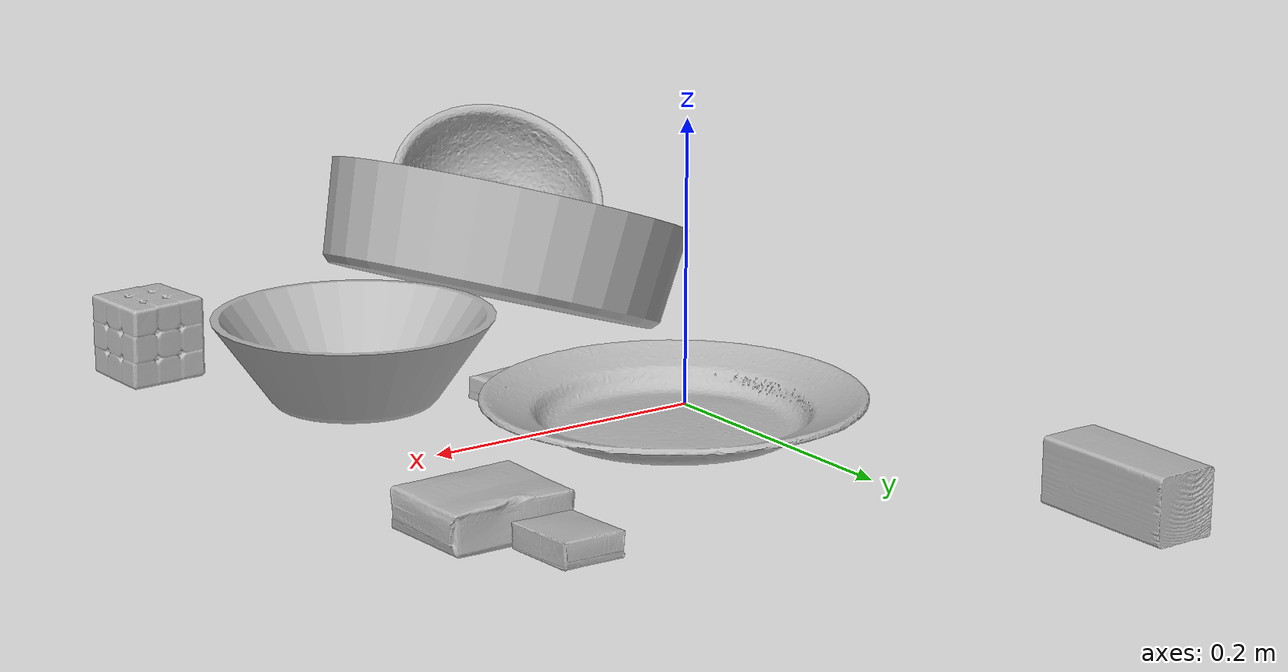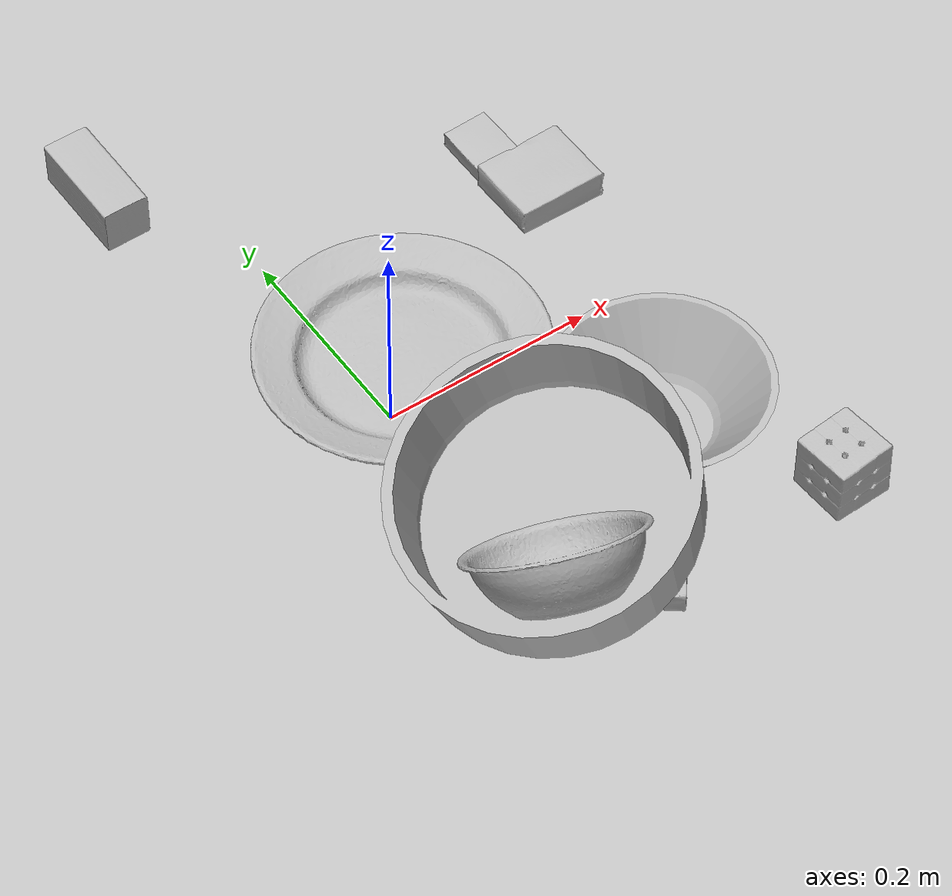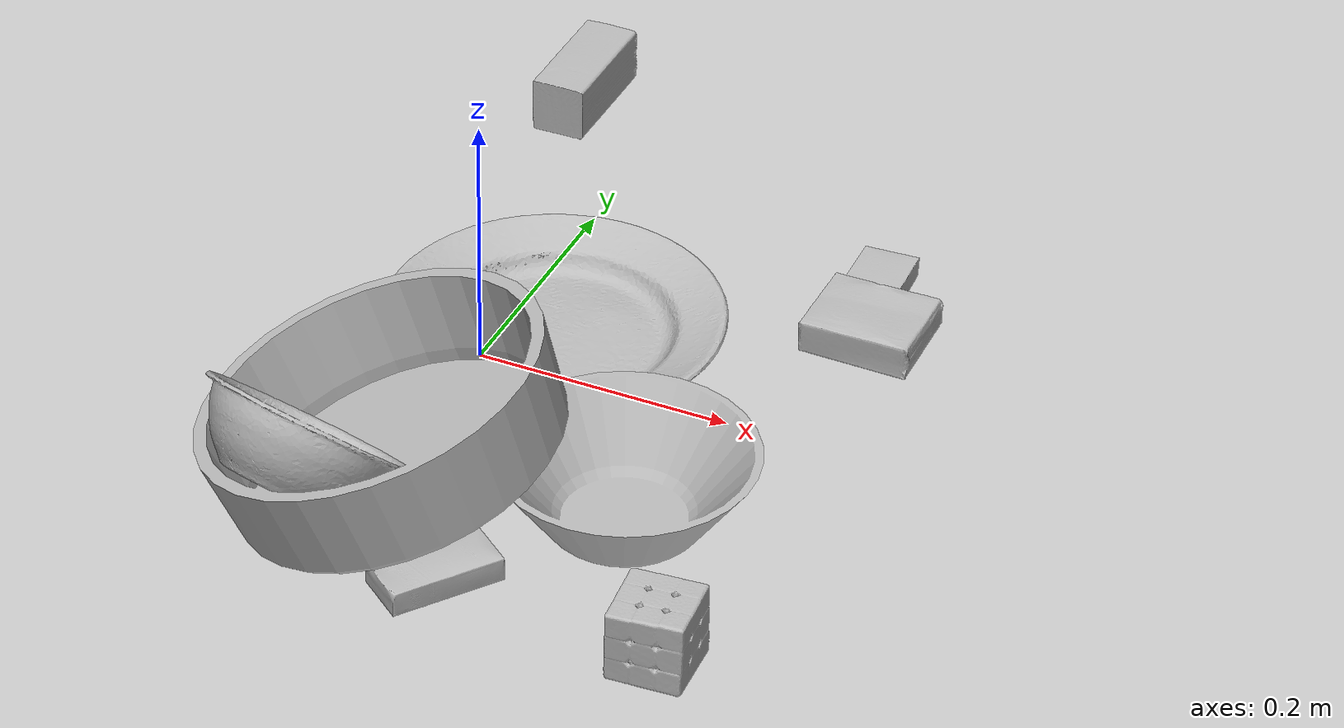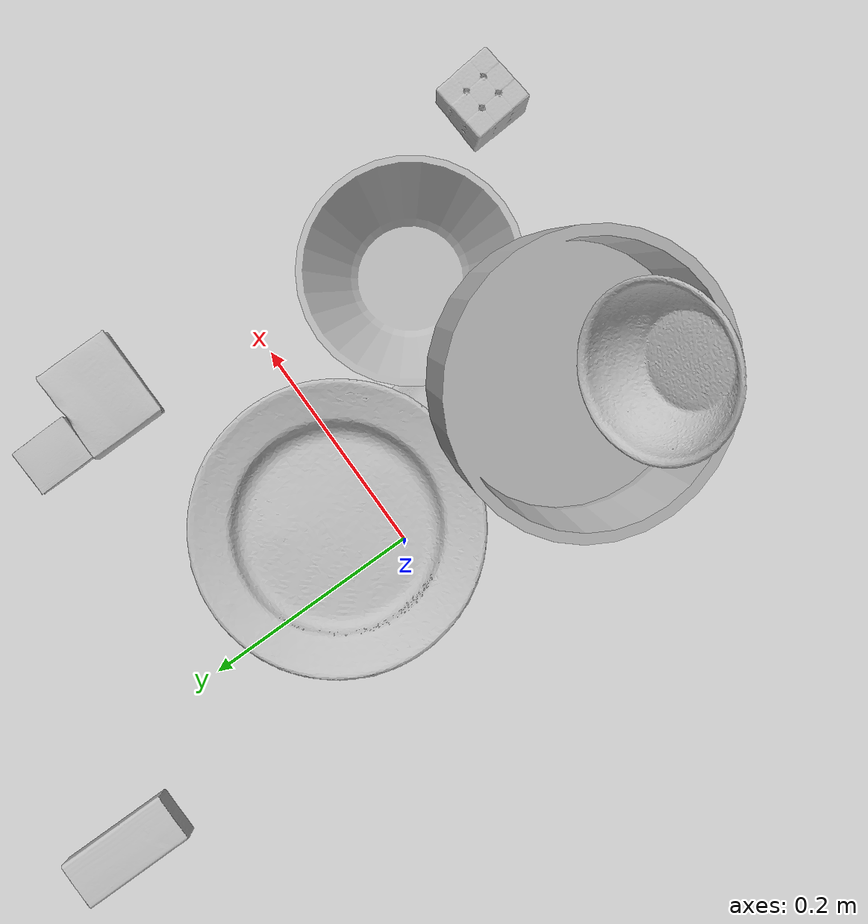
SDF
<sdf version="1.4">
  <world name="default">
    <light name="light1" type="point">
      <pose>0 0 1 0 0 0</pose>
      <diffuse>3 3 3 1</diffuse>
      <specular>3 3 3 1</specular>
    </light>
    <light name="light2" type="point">
      <pose>0 0.5 2 0 0 0</pose>
      <diffuse>1 1 1 1</diffuse>
      <specular>1 1 1 1</specular>
    </light>
    <light name="light3" type="point">
      <pose>0 0.5 2 0 0 0</pose>
      <diffuse>3 3 3 1</diffuse>
      <specular>3 3 3 1</specular>
    </light>
    <scene>
      <ambient>0.7 0.7 0.7</ambient>
    </scene>
    <model name="box1">
      <link name="link_box1">
        <collision name="default">
          <geometry>
            <mesh>
              <uri>model://gelatin_box/collision_meshes/collision.obj</uri>
              <scale>1.0 1.0 1.0</scale>
            </mesh>
          </geometry>
          <surface>
            <friction>
              <ode>
                <mu>0.5</mu>
                <mu2>0.5</mu2>
              </ode>
            </friction>
          <contact>
        <ode>
            <max_vel>0</max_vel>
            <min_depth>0.0001</min_depth>
            <kp>1e8</kp>
        </ode>
    </contact></surface>
        </collision>
        <visual name="default">
          <geometry>
            <mesh>
              <uri>model://gelatin_box/visual_meshes/visual.dae</uri>
              <scale>1.0 1.0 1.0</scale>
            </mesh>
          </geometry>
        </visual>
        <inertial>
          <mass>0.24885821342468262</mass>
          <pose>0.0004319618456065655 0.00011156872642459348 -0.0003640321083366871 -0.0010503721884538221 -0.004755817759936981 0.016440553883063976</pose>
          <inertia>
            <ixx>0.0001756736</ixx>
            <iyy>0.00012548274</iyy>
            <izz>0.00026741438</izz>
            <ixy>0</ixy>
            <ixz>0</ixz>
            <iyz>0</iyz>
          </inertia>
        </inertial>
      </link>
      <pose>0.2551769018173218 0.14147652685642242 0.015168310143053532 0.00559733471032916 -0.007306813645759515 1.5711333205492182</pose>
    </model>
    <model name="box11">
      <link name="link_box11">
        <collision name="default">
          <geometry>
            <mesh>
              <uri>model://pudding_box/collision_meshes/collision.obj</uri>
              <scale>0.5 0.5 0.5</scale>
            </mesh>
          </geometry>
          <surface>
            <friction>
              <ode>
                <mu>0.5</mu>
                <mu2>0.5</mu2>
              </ode>
            </friction>
          <contact>
        <ode>
            <max_vel>0</max_vel>
            <min_depth>0.0001</min_depth>
            <kp>1e8</kp>
        </ode>
    </contact></surface>
        </collision>
        <visual name="default">
          <geometry>
            <mesh>
              <uri>model://pudding_box/visual_meshes/visual.dae</uri>
              <scale>0.5 0.5 0.5</scale>
            </mesh>
          </geometry>
        </visual>
        <inertial>
          <mass>0.031047143042087555</mass>
          <pose>0.00024474109522998333 0.00040339428232982755 -0.0002594413817860186 0.005213102716306955 -0.006603798272123425 0.020079828883677098</pose>
          <inertia>
            <ixx>8.774299e-06</ixx>
            <iyy>5.903411e-06</iyy>
            <izz>1.2957546e-05</izz>
            <ixy>0</ixy>
            <ixz>0</ixz>
            <iyz>0</iyz>
          </inertia>
        </inertial>
      </link>
      <pose>0.23640067875385284 0.20596826076507568 0.009862961247563362 0.022315148020365327 -0.011397524860137152 0.02187533009744624</pose>
    </model>
    <model name="box2">
      <link name="link_box2">
        <collision name="default">
          <geometry>
            <mesh>
              <uri>model://rubiks_cube/collision_meshes/collision.obj</uri>
              <scale>1.0 1.0 1.0</scale>
            </mesh>
          </geometry>
          <surface>
            <friction>
              <ode>
                <mu>0.5</mu>
                <mu2>0.5</mu2>
              </ode>
            </friction>
          <contact>
        <ode>
            <max_vel>0</max_vel>
            <min_depth>0.0001</min_depth>
            <kp>1e8</kp>
        </ode>
    </contact></surface>
        </collision>
        <visual name="default">
          <geometry>
            <mesh>
              <uri>model://rubiks_cube/visual_meshes/visual.dae</uri>
              <scale>1.0 1.0 1.0</scale>
            </mesh>
          </geometry>
        </visual>
        <inertial>
          <mass>0.2106715589761734</mass>
          <pose>2.6721041649580002e-05 5.2569666877388954e-05 -7.264316536748083e-06 -0.05467273700930805 -0.09814071961497198 -0.03445608496414611</pose>
          <inertia>
            <ixx>0.0001164102</ixx>
            <iyy>0.000115867326</iyy>
            <izz>0.00011737483</izz>
            <ixy>0</ixy>
            <ixz>0</ixz>
            <iyz>0</iyz>
          </inertia>
        </inertial>
      </link>
      <pose>0.26900073885917664 -0.27473360300064087 0.02867896854877472 -2.643707866942551e-06 -9.079830425122701e-07 -3.049908225162443</pose>
    </model>
    <model name="box21">
      <link name="link_box21">
        <collision name="default">
          <geometry>
            <mesh>
              <uri>model://wood_block/collision_meshes/collision.obj</uri>
              <scale>0.5 0.5 0.5</scale>
            </mesh>
          </geometry>
          <surface>
            <friction>
              <ode>
                <mu>0.5</mu>
                <mu2>0.5</mu2>
              </ode>
            </friction>
          <contact>
        <ode>
            <max_vel>0</max_vel>
            <min_depth>0.0001</min_depth>
            <kp>1e8</kp>
        </ode>
    </contact></surface>
        </collision>
        <visual name="default">
          <geometry>
            <mesh>
              <uri>model://wood_block/visual_meshes/visual.dae</uri>
              <scale>0.5 0.5 0.5</scale>
            </mesh>
          </geometry>
        </visual>
        <inertial>
          <mass>0.146076962351799</mass>
          <pose>-2.9066577553749084e-06 -0.000285404734313488 0.00013204291462898254 -0.052208177866913126 -0.0051926955252411455 -0.006861378006552687</pose>
          <inertia>
            <ixx>4.8868267e-05</ixx>
            <iyy>0.00015437487</iyy>
            <izz>0.00015379742</izz>
            <ixy>0</ixy>
            <ixz>0</ixz>
            <iyz>0</iyz>
          </inertia>
        </inertial>
      </link>
      <pose>-0.07781731337308884 0.3483722507953644 0.022629264742136 -0.005208622471045474 0.005718751731294235 1.5742612353243135</pose>
    </model>
    <model name="box3">
      <link name="link_box3">
        <collision name="default">
          <geometry>
            <mesh>
              <uri>model://cracker_box/collision_meshes/collision.obj</uri>
              <scale>0.25 0.25 0.25</scale>
            </mesh>
          </geometry>
          <surface>
            <friction>
              <ode>
                <mu>0.5</mu>
                <mu2>0.5</mu2>
              </ode>
            </friction>
          <contact>
        <ode>
            <max_vel>0</max_vel>
            <min_depth>0.0001</min_depth>
            <kp>1e8</kp>
        </ode>
    </contact></surface>
        </collision>
        <visual name="default">
          <geometry>
            <mesh>
              <uri>model://cracker_box/visual_meshes/visual.dae</uri>
              <scale>0.25 0.25 0.25</scale>
            </mesh>
          </geometry>
        </visual>
        <inertial>
          <mass>0.0398951955139637</mass>
          <pose>0.0002366032567806542 6.358561950037256e-05 -0.0004257383698131889 -0.00031620768741309833 -0.011106487737478729 0.0025467957005107203</pose>
          <inertia>
            <ixx>6.342223e-06</ixx>
            <iyy>1.0472255e-05</iyy>
            <izz>1.494487e-05</izz>
            <ixy>0</ixy>
            <ixz>0</ixz>
            <iyz>0</iyz>
          </inertia>
        </inertial>
      </link>
      <pose>0.08731895685195923 -0.07804357260465622 0.009141158312559128 0.0003744963874264975 -8.523014780821629e-05 -3.005533213285023</pose>
    </model>
    <model name="box31">
      <link name="link_box31">
        <collision name="default">
          <geometry>
            <mesh>
              <uri>model://sugar_box/collision_meshes/collision.obj</uri>
              <scale>0.5 0.5 0.5</scale>
            </mesh>
          </geometry>
          <surface>
            <friction>
              <ode>
                <mu>0.5</mu>
                <mu2>0.5</mu2>
              </ode>
            </friction>
          <contact>
        <ode>
            <max_vel>0</max_vel>
            <min_depth>0.0001</min_depth>
            <kp>1e8</kp>
        </ode>
    </contact></surface>
        </collision>
        <visual name="default">
          <geometry>
            <mesh>
              <uri>model://sugar_box/visual_meshes/visual.dae</uri>
              <scale>0.5 0.5 0.5</scale>
            </mesh>
          </geometry>
        </visual>
        <inertial>
          <mass>0.051384337246418</mass>
          <pose>0.0005171863595023751 1.924554817378521e-05 -0.00018182402709499002 -0.00040462574757428057 0.0010506634050244472 0.0026153787892360275</pose>
          <inertia>
            <ixx>1.070332e-05</ixx>
            <iyy>3.4595334e-05</iyy>
            <izz>4.1414743e-05</izz>
            <ixy>0</ixy>
            <ixz>0</ixz>
            <iyz>0</iyz>
          </inertia>
        </inertial>
      </link>
      <pose>0.09173879772424698 -0.2594706416130066 0.011399304494261742 0.0007753877324356284 -0.02343328766042441 0.911606376416332</pose>
    </model>
    <model name="plate1">
      <link name="link_plate1">
        <collision name="default">
          <geometry>
            <mesh>
              <uri>model://plate/collision_meshes/collision.obj</uri>
              <scale>1.0 1.0 1.0</scale>
            </mesh>
          </geometry>
          <surface>
            <friction>
              <ode>
                <mu>0.5</mu>
                <mu2>0.5</mu2>
              </ode>
            </friction>
          <contact>
        <ode>
            <max_vel>0</max_vel>
            <min_depth>0.0001</min_depth>
            <kp>1e8</kp>
        </ode>
    </contact></surface>
        </collision>
        <visual name="default">
          <geometry>
            <mesh>
              <uri>model://plate/visual_meshes/visual.dae</uri>
              <scale>1.0 1.0 1.0</scale>
            </mesh>
          </geometry>
        </visual>
        <inertial>
          <mass>0.18845537304878235</mass>
          <pose>-0.0006044640904292464 0.00027825849247165024 -0.0010561994276940823 0.0022188128524267426 -0.0032254640251278745 0.45260123674794867</pose>
          <inertia>
            <ixx>0.0008815983</ixx>
            <iyy>0.00087316614</iyy>
            <izz>0.001724274</izz>
            <ixy>0</ixy>
            <ixz>0</ixz>
            <iyz>0</iyz>
          </inertia>
        </inertial>
      </link>
      <pose>0.04065074771642685 0.042009010910987854 0.01373304333537817 4.62833995814824e-06 2.2785578082928663e-05 1.3024571054478646</pose>
    </model>
    <model name="bowl1">
      <link name="link_bowl1">
        <collision name="default">
          <geometry>
            <mesh>
              <uri>model://bowl_a/collision_meshes/collision.obj</uri>
              <scale>1.0 1.0 1.0</scale>
            </mesh>
          </geometry>
          <surface>
            <friction>
              <ode>
                <mu>0.5</mu>
                <mu2>0.5</mu2>
              </ode>
            </friction>
          <contact>
        <ode>
            <max_vel>0</max_vel>
            <min_depth>0.0001</min_depth>
            <kp>1e8</kp>
        </ode>
    </contact></surface>
        </collision>
        <visual name="default">
          <geometry>
            <mesh>
              <uri>model://bowl_a/visual_meshes/visual.dae</uri>
              <scale>1.0 1.0 1.0</scale>
            </mesh>
          </geometry>
        </visual>
        <inertial>
          <mass>0.46761196851730347</mass>
          <pose>0.0002786737459246069 4.731199442176148e-05 -0.0013765295734629035 -0.0009805421566516771 -0.0010938164969012795 -0.19123134440759623</pose>
          <inertia>
            <ixx>0.0013313128</ixx>
            <iyy>0.0013394863</iyy>
            <izz>0.0023677913</izz>
            <ixy>0</ixy>
            <ixz>0</ixz>
            <iyz>0</iyz>
          </inertia>
        </inertial>
      </link>
      <pose>0.1816193014383316 -0.1369718611240387 0.030383486300706863 -1.4038977188135705e-05 9.681219572560591e-06 1.371750329484468</pose>
    </model>
    <model name="plate2">
      <link name="link_plate2">
        <collision name="default">
          <geometry>
            <mesh>
              <uri>model://pan_tefal/collision_meshes/collision.obj</uri>
              <scale>1.0 1.0 1.0</scale>
            </mesh>
          </geometry>
          <surface>
            <friction>
              <ode>
                <mu>0.5</mu>
                <mu2>0.5</mu2>
              </ode>
            </friction>
          <contact>
        <ode>
            <max_vel>0</max_vel>
            <min_depth>0.0001</min_depth>
            <kp>1e8</kp>
        </ode>
    </contact></surface>
        </collision>
        <visual name="default">
          <geometry>
            <mesh>
              <uri>model://pan_tefal/visual_meshes/visual.dae</uri>
              <scale>1.0 1.0 1.0</scale>
            </mesh>
          </geometry>
        </visual>
        <inertial>
          <mass>0.7360396385192871</mass>
          <pose>-0.00018002057913690805 3.2791922421893105e-05 -0.00851493515074253 0.0008190284364517867 -0.0003301440136962699 -0.3318532577359739</pose>
          <inertia>
            <ixx>0.0050808466</ixx>
            <iyy>0.005113603</iyy>
            <izz>0.00935286</izz>
            <ixy>0</ixy>
            <ixz>0</ixz>
            <iyz>0</iyz>
          </inertia>
        </inertial>
      </link>
      <pose>0.02323947101831436 -0.19697228074073792 0.07536238431930542 -0.19152062935556644 0.29134780621242234 2.880962871131731</pose>
    </model>
    <model name="bowl2">
      <link name="link_bowl2">
        <collision name="default">
          <geometry>
            <mesh>
              <uri>model://bowl/collision_meshes/collision.obj</uri>
              <scale>1.0 1.0 1.0</scale>
            </mesh>
          </geometry>
          <surface>
            <friction>
              <ode>
                <mu>0.5</mu>
                <mu2>0.5</mu2>
              </ode>
            </friction>
          <contact>
        <ode>
            <max_vel>0</max_vel>
            <min_depth>0.0001</min_depth>
            <kp>1e8</kp>
        </ode>
    </contact></surface>
        </collision>
        <visual name="default">
          <geometry>
            <mesh>
              <uri>model://bowl/visual_meshes/visual.dae</uri>
              <scale>1.0 1.0 1.0</scale>
            </mesh>
          </geometry>
        </visual>
        <inertial>
          <mass>0.11974068731069565</mass>
          <pose>0.00020445311383809894 -0.0010302052833139896 -0.0008042640401981771 -0.015764214972767723 0.014546668027170537 0.7140316235505751</pose>
          <inertia>
            <ixx>0.00027505384</ixx>
            <iyy>0.000268908</iyy>
            <izz>0.00046273507</izz>
            <ixy>0</ixy>
            <ixz>0</ixz>
            <iyz>0</iyz>
          </inertia>
        </inertial>
      </link>
      <pose>-0.013398927636444569 -0.26593825221061707 0.0826026126742363 -0.6724150847642509 -0.3275236298142193 -0.6376166428307457</pose>
    </model>
  <physics type="ode">
      <max_contacts>50</max_contacts>
      <ode>
        <solver>
          <type>quick</type>
          <iters>75</iters>
        </solver>
        <constraints>
          <contact_max_correcting_vel>0</contact_max_correcting_vel>
          <contact_surface_layer>0</contact_surface_layer>
        </constraints>
      </ode>
    </physics></world>
</sdf>
